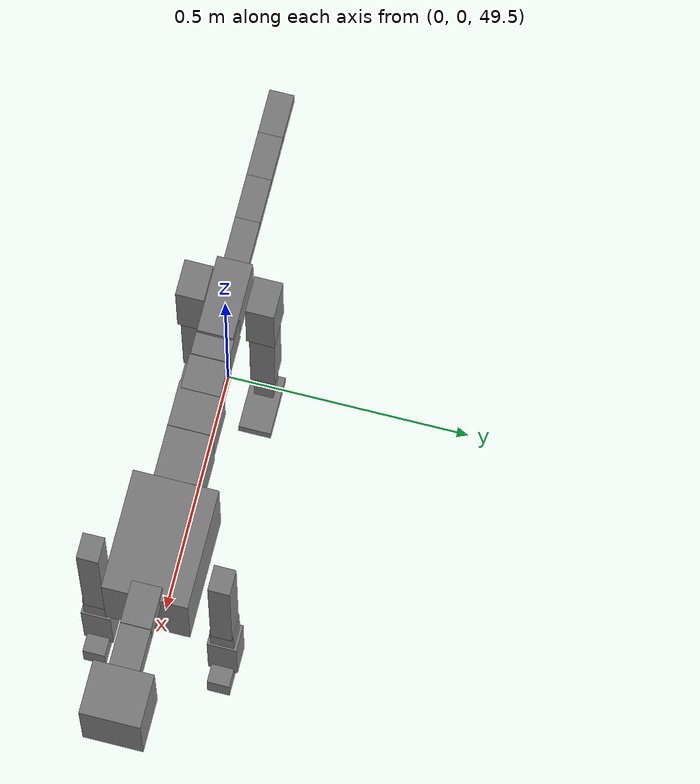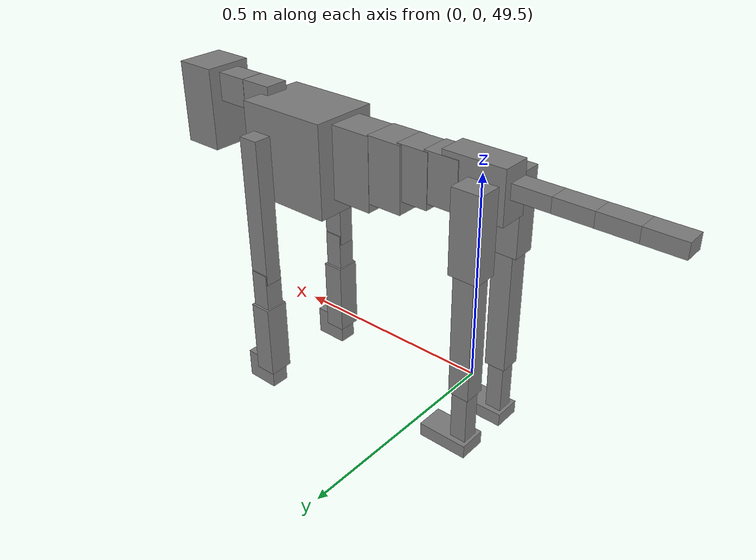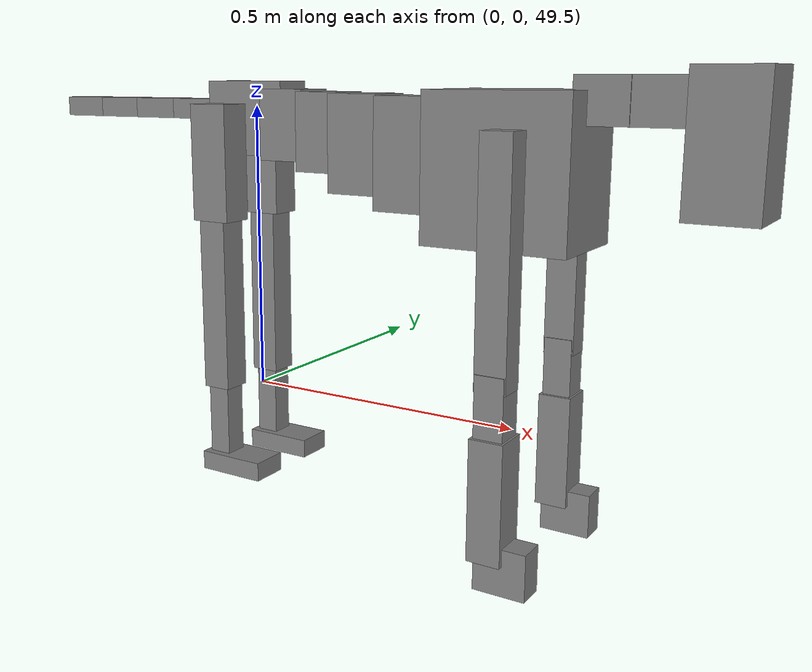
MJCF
<mujoco model="dog">

    <default>
        <joint armature="0.02" stiffness="1" damping="0.2" limited="true"/>
        <geom condim="3" friction="1 0.05 0.05" margin="0.01"/>
        <motor ctrllimited="true" ctrlrange="-1.0 1.0" forcelimited="true" gear="50"/>
    </default>

    <compiler inertiafromgeom="true" angle="radian"/>

    <option timestep="0.016" iterations="50" tolerance="1e-10" solver="Newton" jacobian="dense" cone="pyramidal"/>

    <size nconmax="20000" njmax="60000" nstack="5000000"/>
    <visual>
        <map force="0.1" zfar="30"/>
        <rgba haze="0.15 0.25 0.35 1"/>
        <quality shadowsize="2048"/>
        <global offwidth="800" offheight="800"/>
    </visual>

    <asset>
        <texture type="skybox" builtin="gradient" rgb1="0.3 0.5 0.7" rgb2="0 0 0" width="512" height="512"/>
        <texture name="texplane" type="2d" builtin="checker" rgb1=".2 .3 .4" rgb2=".1 0.15 0.2" width="512" height="512"
                 mark="cross" markrgb=".8 .8 .8"/>
        <texture name="texgeom" type="cube" builtin="flat" mark="cross" width="127" height="1278" rgb1="0.8 0.6 0.4"
                 rgb2="0.8 0.6 0.4" markrgb="1 1 1" random="0.01"/>

        <material name="matplane" reflectance="0.3" texture="texplane" texrepeat="1 1" texuniform="true"/>
        <material name="matgeom" texture="texgeom" texuniform="true" rgba="0.8 0.6 .4 1"/>
    </asset>

    <worldbody>
        <geom name="floor" pos="0 0 0" size="0 0 .25" type="plane" material="matplane" condim="3"/>

        <light directional="false" diffuse=".2 .2 .2" specular="0 0 0" pos="0 0 5" dir="0 0 -1" castshadow="false"/>
        <light mode="targetbodycom" target="torso" directional="false" diffuse=".8 .8 .8" specular="0.3 0.3 0.3"
               pos="0 0 4.0" dir="0 0 -1"/>

        <body name="root" pos="0 0 50">
            <freejoint name="root_1"/>
            <geom type="box" pos="0 0 -0.02" size="0.0774  0.0358  0.063" density="2030"/>

            <body name="spine1" pos="0.054 0 0">
                <joint name="spine1_y" axis="0 1 0" range="0 0.7" limited="true"/>
                <geom type="box" pos="0.02375 0 -0.03" size="0.04375  0.0375  0.05985" density="2030"/>

                <body name="spine2" pos="0.0612 0 0">
                    <joint name="spine2_y" axis="0 1 0" range="-0.15 0.15" limited="true"/>
                    <geom type="box" pos="0.03555  0  -0.04" size="0.04055  0.039  0.06615" density="2030"/>

                    <body name="spine3" pos="0.0730 0 0">
                        <joint name="spine3_y" axis="0 1 0" range="-0.15 0.15" limited="true"/>
                        <geom type="box" pos="0.03555  0  -0.057" size="0.04555  0.0445  0.081" density="2030"/>

                        <body name="spine4" pos="0.0780 0 0">
                            <joint name="spine4_y" axis="0 1 0" range="-0.15 0.15" limited="true"/>
                            <geom type="box" pos="0.05265  0  -0.07" size="0.05265  0.045  0.09135" density="2030"/>

                            <body name="torso" pos="0.1082 0 0">
                                <joint name="torso_y" axis="0 1 0" range="-0.15 0.15" limited="true"/>
                                <geom type="box" pos="0.11925  0  -0.085" size="0.11925  0.085  0.11745"
                                      density="2030"/>

                                <body name="neck1" pos="0.2160  0   0.0180">
                                    <joint name="neck1_y" axis="0 1 0" range="-1.2  -1" limited="true"/>
                                    <geom type="box" pos="0.0423  0  0" size="0.0423  0.03  0.036" density="2325"/>

                                    <body name="neck2" pos="0.0853  0  0">
                                        <joint name="neck2_y" axis="0 1 0" range="0.1  0" limited="true"/>
                                        <geom type="box" pos="0.0423  0  0" size="0.0423  0.03  0.036" density="2325"/>

                                        <body name="head" pos="0.0853  0  0">
                                            <joint name="head_y" axis="0 1 0" range="-0.3  -0.2" limited="true"/>
                                            <geom type="box" pos="0.0531  0  -0.055" size="0.0531  0.06  0.1044"
                                                  density="4030"/>

                                        </body>
                                    </body>
                                </body>

                                <body name="front_shoulder" pos="0.156  0   -0.0480">
                                    <joint name="front_shoulder_y" axis="0 1 0" range="-1 1.5" limited="true"/>
                                    <geom type="box" pos="0 0.13 -0.1608" size="0.0256  0.0219  0.1874" density="1158"/>
                                    <geom type="box" pos="0 -0.13 -0.1608" size="0.0256  0.0219  0.1874"
                                          density="1158"/>

                                    <body name="front_elbow" pos="0  0  -0.3216">
                                        <joint name="front_elbow_y" axis="0 1 0" range="-2 0" limited="true"/>
                                        <geom type="box" pos="0 0.13 -0.0551" size="0.0237  0.0243  0.0551"
                                              density="1081"/>
                                        <geom type="box" pos="0 -0.13 -0.0551" size="0.0237  0.0243  0.0551"
                                              density="1081"/>

                                        <body name="front_wrist" pos="0  0  -0.1101">
                                            <joint name="front_wrist_y" axis="0 1 0" range="-0.2 0" limited="true"/>
                                            <geom type="box" pos="0 0.13 -0.0830" size="0.0275  0.0305  0.0962"
                                                  density="1664"/>
                                            <geom type="box" pos="0 -0.13 -0.0830" size="0.0275  0.0305  0.0962"
                                                  density="1664"/>

                                            <body name="front_finger_end" pos="0  0  -0.1661">
                                                <joint name="front_finger_y" axis="0 1 0" range="-0.4 1"
                                                       limited="true"/>
                                                <geom type="box" pos="0.0232  0.13  -0.0225"
                                                      size="0.0426  0.0232  0.0375" density="1515"/>
                                                <geom type="box" pos="0.0232  -0.13  -0.0225"
                                                      size="0.0426  0.0232  0.0375" density="1515"/>

                                            </body>

                                        </body>
                                    </body>
                                </body>

                            </body>
                        </body>
                    </body>
                </body>
            </body>

            <body name="back_hip" pos="-0.03 0 -0.018">
                <joint name="back_hip_y" axis="0 1 0" range="-1.5 0.3" limited="true"/>
                <geom type="box" pos="0 0.07 -0.0766" size="0.0365  0.0286  0.0994" density="1154"/>
                <geom type="box" pos="0 -0.07 -0.0766" size="0.0365  0.0286  0.0994" density="1154"/>

                <body name="back_knee" pos="0  0  -0.1531">
                    <joint name="back_knee_y" axis="0 1 0" range="0 2.8" limited="true"/>
                    <geom type="box" pos="0 0.07 -0.1529" size="0.0258  0.0255  0.1684" density="1227"/>
                    <geom type="box" pos="0 -0.07 -0.1529" size="0.0258  0.0255  0.1684" density="1227"/>

                    <body name="back_ankle" pos="0  0  -0.3058">
                        <joint name="back_ankle_y" axis="0 1 0" range="-2.2 0" limited="true"/>
                        <geom type="box" pos="0 0.07 -0.0762" size="0.0201  0.0201  0.0875" density="1284"/>
                        <geom type="box" pos="0 -0.07 -0.0762" size="0.0201  0.0201  0.0875" density="1284"/>

                        <body name="back_toe_end" pos="0  0  -0.1524">
                            <joint name="back_toe_y" axis="0 1 0" range="-0.4 1" limited="true"/>
                            <geom type="box" pos="0.0336  0.07  -0.0014" size="0.0617  0.0336  0.0164" density="1515"/>
                            <geom type="box" pos="0.0336  -0.07  -0.0014" size="0.0617  0.0336  0.0164" density="1515"/>

                        </body>
                    </body>
                </body>
            </body>

            <body name="tail1" pos="-0.074 0 -0.006">
                <joint name="tail1_y" axis="0 1 0" range="-0.2 0.2" limited="true"/>
                <geom type="box" pos="-0.0536  0  0" size="0.045  0.025  0.0175" density="1587"/>

                <body name="tail2" pos="-0.09 0 0">
                    <joint name="tail2_y" axis="0 1 0" range="-0.2 0.2" limited="true"/>
                    <geom type="box" pos="-0.0536  0  0" size="0.045  0.025  0.0175" density="1587"/>

                    <body name="tail3" pos="-0.09 0 0">
                        <joint name="tail3_y" axis="0 1 0" range="-0.2 0.2" limited="true"/>
                        <geom type="box" pos="-0.0536  0  0" size="0.045  0.025  0.0175" density="1587"/>

                        <body name="tail4" pos="-0.09 0 0">
                            <joint name="tail4_y" axis="0 1 0" range="-0.2 0.2" limited="true"/>
                            <geom type="box" pos="-0.0536  0  0" size="0.045  0.025  0.0175" density="1587"/>

                        </body>
                    </body>
                </body>
            </body>
        </body>
    </worldbody>

    <actuator>
        <motor joint="spine1_y" forcerange="-150 150     "/>
        <motor joint="spine2_y" forcerange="-150 150     "/>
        <motor joint="spine3_y" forcerange="-150 150     "/>
        <motor joint="spine4_y" forcerange="-150 150     "/>
        <motor joint="torso_y" forcerange="-150 150     "/>
        <motor joint="neck1_y" forcerange="-100 100       "/>
        <motor joint="neck2_y" forcerange="-100 100       "/>
        <motor joint="head_y" forcerange="-150 150       "/>
        <motor joint="front_shoulder_y" forcerange="-122.60 123.49"/>
        <motor joint="front_elbow_y" forcerange="-117.91 158.56"/>
        <motor joint="front_wrist_y" forcerange="-119.53 124.52"/>
        <motor joint="front_finger_y" forcerange="-35.57 48.28"/>
        <motor joint="back_hip_y" forcerange="-308.47 272.82"/>
        <motor joint="back_knee_y" forcerange="-285.76 284.62"/>
        <motor joint="back_angle_y" forcerange="-78.89 143.43"/>
        <motor joint="back_toe_y" forcerange="-95.56 93.54"/>
        <motor joint="tail1_y" forcerange="-50 50     "/>
        <motor joint="tail2_y" forcerange="-50 50     "/>
        <motor joint="tail3_y" forcerange="-50 50     "/>
        <motor joint="tail4_y" forcerange="-50 50     "/>
    </actuator>
</mujoco>
